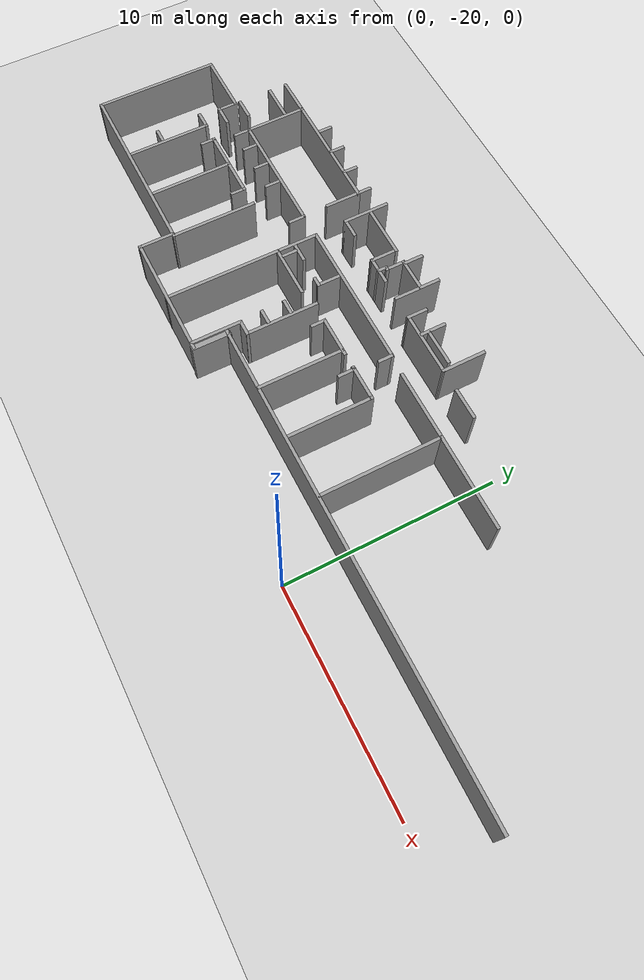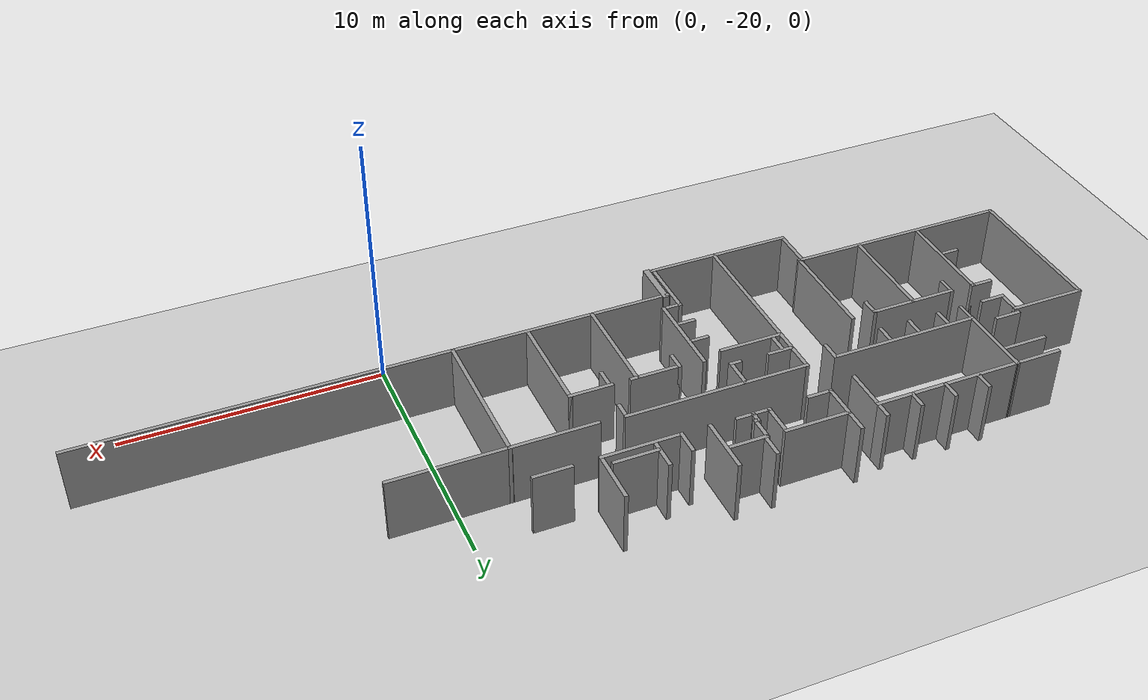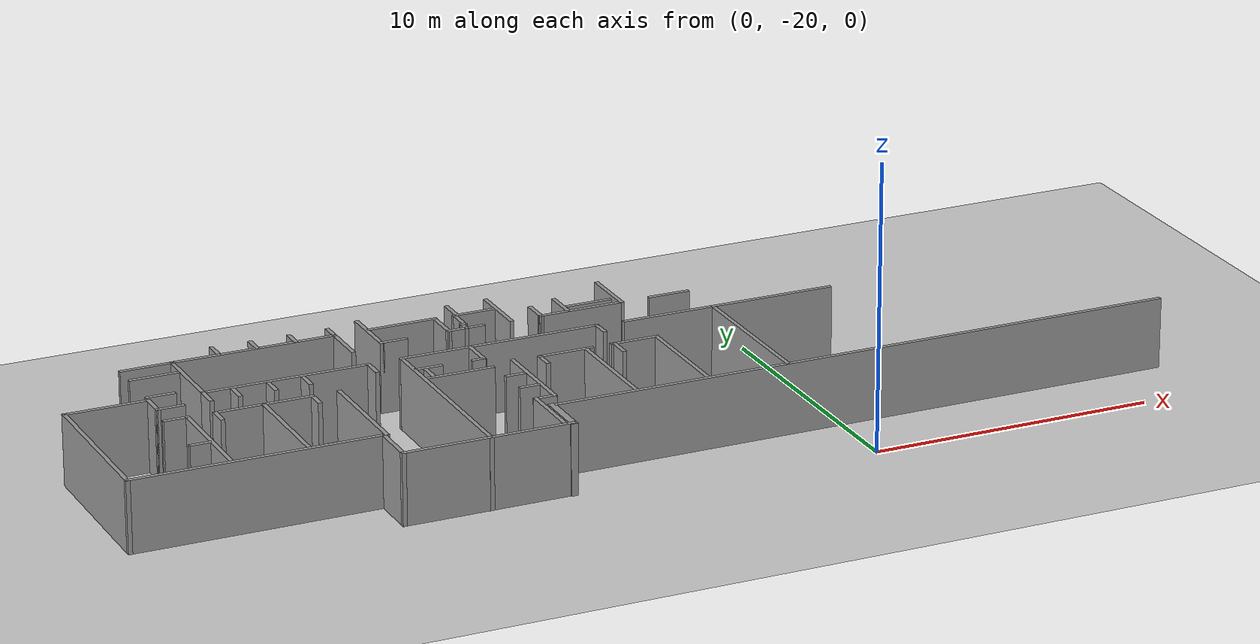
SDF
<sdf version="1.6">
 <world name="default">
  <model name="ground_plane">
   <static>1</static>
   <link name="link">
    <collision name="collision">
     <geometry><plane><normal>0 0 1</normal><size>100 100</size></plane></geometry>
     <surface>
      <contact><collide_bitmask>65535</collide_bitmask></contact>
      <friction><ode><mu>100</mu><mu2>50</mu2></ode></friction>
     </surface>
    </collision>
    <visual name="visual">
     <cast_shadows>0</cast_shadows>
     <geometry><plane><normal>0 0 1</normal><size>100 100</size></plane></geometry>
     <material>
      <script><uri>file://media/materials/scripts/gazebo.material</uri><name>Gazebo/Grey</name></script>
     </material>
    </visual>
   </link>
  </model>
  <model name="harnwell">
   <pose>0.907995 -0.1981 0 0 -0 0</pose>
   <link name="Wall_229">
    <collision name="Wall_229_Collision">
     <geometry><box><size>22.4909 0.15 2.5</size></box></geometry>
     <pose>0 0 1.25 0 -0 0</pose>
    </collision>
    <visual name="Wall_229_Visual">
     <pose>0 0 1.25 0 -0 0</pose>
     <geometry><box><size>22.4909 0.15 2.5</size></box></geometry>
     <material>
      <script><uri>file://media/materials/scripts/gazebo.material</uri><name>Gazebo/Grey</name></script>
      <ambient>1 1 1 1</ambient>
     </material>
     <meta><layer>0</layer></meta>
    </visual>
    <pose>-0.120445 -17.1775 0 0 -0 3.1414</pose>
   </link>
   <link name="Wall_230">
    <collision name="Wall_230_Collision">
     <geometry><box><size>1.85459 0.25 2.5</size></box></geometry>
     <pose>0 0 1.25 0 -0 0</pose>
    </collision>
    <visual name="Wall_230_Visual">
     <pose>0 0 1.25 0 -0 0</pose>
     <geometry><box><size>1.85459 0.25 2.5</size></box></geometry>
     <material>
      <script><uri>file://media/materials/scripts/gazebo.material</uri><name>Gazebo/Grey</name></script>
      <ambient>1 1 1 1</ambient>
     </material>
     <meta><layer>0</layer></meta>
    </visual>
    <pose>-11.2954 -17.9776 0 0 -0 -1.57648</pose>
   </link>
   <link name="Wall_232">
    <collision name="Wall_232_Collision">
     <geometry><box><size>6 0.15 2.5</size></box></geometry>
     <pose>0 0 1.25 0 -0 0</pose>
    </collision>
    <visual name="Wall_232_Visual">
     <pose>0 0 1.25 0 -0 0</pose>
     <geometry><box><size>6 0.15 2.5</size></box></geometry>
     <material>
      <script><uri>file://media/materials/scripts/gazebo.material</uri><name>Gazebo/Grey</name></script>
      <ambient>1 1 1 1</ambient>
     </material>
     <meta><layer>0</layer></meta>
    </visual>
    <pose>-14.225 -18.7799 0 0 -0 3.14159</pose>
   </link>
   <link name="Wall_233">
    <collision name="Wall_233_Collision">
     <geometry><box><size>1.75 0.15 2.5</size></box></geometry>
     <pose>0 0 1.25 0 -0 0</pose>
    </collision>
    <visual name="Wall_233_Visual">
     <pose>0 0 1.25 0 -0 0</pose>
     <geometry><box><size>1.75 0.15 2.5</size></box></geometry>
     <material>
      <script><uri>file://media/materials/scripts/gazebo.material</uri><name>Gazebo/Grey</name></script>
      <ambient>1 1 1 1</ambient>
     </material>
     <meta><layer>0</layer></meta>
    </visual>
    <pose>-17.15 -17.9799 0 0 -0 1.5708</pose>
   </link>
   <link name="Wall_235">
    <collision name="Wall_235_Collision">
     <geometry><box><size>8.75 0.15 2.5</size></box></geometry>
     <pose>0 0 1.25 0 -0 0</pose>
    </collision>
    <visual name="Wall_235_Visual">
     <pose>0 0 1.25 0 -0 0</pose>
     <geometry><box><size>8.75 0.15 2.5</size></box></geometry>
     <material>
      <script><uri>file://media/materials/scripts/gazebo.material</uri><name>Gazebo/Grey</name></script>
      <ambient>1 1 1 1</ambient>
     </material>
     <meta><layer>0</layer></meta>
    </visual>
    <pose>-21.45 -17.1799 0 0 -0 3.14159</pose>
   </link>
   <link name="Wall_236">
    <collision name="Wall_236_Collision">
     <geometry><box><size>6 0.15 2.5</size></box></geometry>
     <pose>0 0 1.25 0 -0 0</pose>
    </collision>
    <visual name="Wall_236_Visual">
     <pose>0 0 1.25 0 -0 0</pose>
     <geometry><box><size>6 0.15 2.5</size></box></geometry>
     <material>
      <script><uri>file://media/materials/scripts/gazebo.material</uri><name>Gazebo/Grey</name></script>
      <ambient>1 1 1 1</ambient>
     </material>
     <meta><layer>0</layer></meta>
    </visual>
    <pose>-25.75 -14.2549 0 0 -0 1.5708</pose>
   </link>
   <link name="Wall_240">
    <collision name="Wall_240_Collision">
     <geometry><box><size>3 0.15 2.5</size></box></geometry>
     <pose>0 0 1.25 0 -0 0</pose>
    </collision>
    <visual name="Wall_240_Visual">
     <pose>0 0 1.25 0 -0 0</pose>
     <geometry><box><size>3 0.15 2.5</size></box></geometry>
     <material>
      <script><uri>file://media/materials/scripts/gazebo.material</uri><name>Gazebo/Grey</name></script>
      <ambient>1 1 1 1</ambient>
     </material>
     <meta><layer>0</layer></meta>
    </visual>
    <pose>-24.325 -11.3299 0 0 -0 0</pose>
   </link>
   <link name="Wall_257">
    <collision name="Wall_257_Collision">
     <geometry><box><size>1.5 0.15 2.5</size></box></geometry>
     <pose>0 0 1.25 0 -0 0</pose>
    </collision>
    <visual name="Wall_257_Visual">
     <pose>0 0 1.25 0 -0 0</pose>
     <geometry><box><size>1.5 0.15 2.5</size></box></geometry>
     <material>
      <script><uri>file://media/materials/scripts/gazebo.material</uri><name>Gazebo/Grey</name></script>
      <ambient>1 1 1 1</ambient>
     </material>
     <meta><layer>0</layer></meta>
    </visual>
    <pose>-3.74086 -9.85348 0 0 -0 3.14159</pose>
   </link>
   <link name="Wall_264">
    <collision name="Wall_264_Collision">
     <geometry><box><size>2.12014 0.15 2.5</size></box></geometry>
     <pose>0 0 1.25 0 -0 0</pose>
    </collision>
    <visual name="Wall_264_Visual">
     <pose>0 0 1.25 0 -0 0</pose>
     <geometry><box><size>2.12014 0.15 2.5</size></box></geometry>
     <material>
      <script><uri>file://media/materials/scripts/gazebo.material</uri><name>Gazebo/Grey</name></script>
      <ambient>1 1 1 1</ambient>
     </material>
     <meta><layer>0</layer></meta>
    </visual>
    <pose>-5.489 -8.87493 0 0 -0 -1.5708</pose>
   </link>
   <link name="Wall_266">
    <collision name="Wall_266_Collision">
     <geometry><box><size>3.11924 0.15 2.5</size></box></geometry>
     <pose>0 0 1.25 0 -0 0</pose>
    </collision>
    <visual name="Wall_266_Visual">
     <pose>0 0 1.25 0 -0 0</pose>
     <geometry><box><size>3.11924 0.15 2.5</size></box></geometry>
     <material>
      <script><uri>file://media/materials/scripts/gazebo.material</uri><name>Gazebo/Grey</name></script>
      <ambient>1 1 1 1</ambient>
     </material>
     <meta><layer>0</layer></meta>
    </visual>
    <pose>-6.97361 -9.86344 0 0 -0 0.002367</pose>
   </link>
   <link name="Wall_268">
    <collision name="Wall_268_Collision">
     <geometry><box><size>1 0.15 2.5</size></box></geometry>
     <pose>0 0 1.25 0 -0 0</pose>
    </collision>
    <visual name="Wall_268_Visual">
     <pose>0 0 1.25 0 -0 0</pose>
     <geometry><box><size>1 0.15 2.5</size></box></geometry>
     <material>
      <script><uri>file://media/materials/scripts/gazebo.material</uri><name>Gazebo/Grey</name></script>
      <ambient>1 1 1 1</ambient>
     </material>
     <meta><layer>0</layer></meta>
    </visual>
    <pose>-8.45822 -9.44195 0 0 -0 1.5708</pose>
   </link>
   <link name="Wall_291">
    <collision name="Wall_291_Collision">
     <geometry><box><size>1.25 0.15 2.5</size></box></geometry>
     <pose>0 0 1.25 0 -0 0</pose>
    </collision>
    <visual name="Wall_291_Visual">
     <pose>0 0 1.25 0 -0 0</pose>
     <geometry><box><size>1.25 0.15 2.5</size></box></geometry>
     <material>
      <script><uri>file://media/materials/scripts/gazebo.material</uri><name>Gazebo/Grey</name></script>
      <ambient>1 1 1 1</ambient>
     </material>
     <meta><layer>0</layer></meta>
    </visual>
    <pose>-7.44674 -9.23588 0 0 -0 -1.5708</pose>
   </link>
   <link name="Wall_294">
    <collision name="Wall_294_Collision">
     <geometry><box><size>1.75 0.15 2.5</size></box></geometry>
     <pose>0 0 1.25 0 -0 0</pose>
    </collision>
    <visual name="Wall_294_Visual">
     <pose>0 0 1.25 0 -0 0</pose>
     <geometry><box><size>1.75 0.15 2.5</size></box></geometry>
     <material>
      <script><uri>file://media/materials/scripts/gazebo.material</uri><name>Gazebo/Grey</name></script>
      <ambient>1 1 1 1</ambient>
     </material>
     <meta><layer>0</layer></meta>
    </visual>
    <pose>-6.58293 -9.45741 0 0 -0 0</pose>
   </link>
   <link name="Wall_296">
    <collision name="Wall_296_Collision">
     <geometry><box><size>2.25 0.15 2.5</size></box></geometry>
     <pose>0 0 1.25 0 -0 0</pose>
    </collision>
    <visual name="Wall_296_Visual">
     <pose>0 0 1.25 0 -0 0</pose>
     <geometry><box><size>2.25 0.15 2.5</size></box></geometry>
     <material>
      <script><uri>file://media/materials/scripts/gazebo.material</uri><name>Gazebo/Grey</name></script>
      <ambient>1 1 1 1</ambient>
     </material>
     <meta><layer>0</layer></meta>
    </visual>
    <pose>-9.54286 -8.80519 0 0 -0 -1.5708</pose>
   </link>
   <link name="Wall_298">
    <collision name="Wall_298_Collision">
     <geometry><box><size>1.64653 0.15 2.5</size></box></geometry>
     <pose>0 0 1.25 0 -0 0</pose>
    </collision>
    <visual name="Wall_298_Visual">
     <pose>0 0 1.25 0 -0 0</pose>
     <geometry><box><size>1.64653 0.15 2.5</size></box></geometry>
     <material>
      <script><uri>file://media/materials/scripts/gazebo.material</uri><name>Gazebo/Grey</name></script>
      <ambient>1 1 1 1</ambient>
     </material>
     <meta><layer>0</layer></meta>
    </visual>
    <pose>-10.3184 -8.63059 0 0 -0 0</pose>
   </link>
   <link name="Wall_301">
    <collision name="Wall_301_Collision">
     <geometry><box><size>0.25 0.15 2.5</size></box></geometry>
     <pose>0 0 1.25 0 -0 0</pose>
    </collision>
    <visual name="Wall_301_Visual">
     <pose>0 0 1.25 0 -0 0</pose>
     <geometry><box><size>0.25 0.15 2.5</size></box></geometry>
     <material>
      <script><uri>file://media/materials/scripts/gazebo.material</uri><name>Gazebo/Grey</name></script>
      <ambient>1 1 1 1</ambient>
     </material>
     <meta><layer>0</layer></meta>
    </visual>
    <pose>-11.1166 -9.48059 0 0 -0 3.14159</pose>
   </link>
   <link name="Wall_302">
    <collision name="Wall_302_Collision">
     <geometry><box><size>0.505938 0.15 2.5</size></box></geometry>
     <pose>0 0 1.25 0 -0 0</pose>
    </collision>
    <visual name="Wall_302_Visual">
     <pose>0 0 1.25 0 -0 0</pose>
     <geometry><box><size>0.505938 0.15 2.5</size></box></geometry>
     <material>
      <script><uri>file://media/materials/scripts/gazebo.material</uri><name>Gazebo/Grey</name></script>
      <ambient>1 1 1 1</ambient>
     </material>
     <meta><layer>0</layer></meta>
    </visual>
    <pose>-11.1668 -9.65826 0 0 -0 -1.57185</pose>
   </link>
   <link name="Wall_303">
    <collision name="Wall_303_Collision">
     <geometry><box><size>0.750401 0.15 2.5</size></box></geometry>
     <pose>0 0 1.25 0 -0 0</pose>
    </collision>
    <visual name="Wall_303_Visual">
     <pose>0 0 1.25 0 -0 0</pose>
     <geometry><box><size>0.750401 0.15 2.5</size></box></geometry>
     <material>
      <script><uri>file://media/materials/scripts/gazebo.material</uri><name>Gazebo/Grey</name></script>
      <ambient>1 1 1 1</ambient>
     </material>
     <meta><layer>0</layer></meta>
    </visual>
    <pose>-10.867 -9.83593 0 0 -0 0</pose>
   </link>
   <link name="Wall_308">
    <collision name="Wall_308_Collision">
     <geometry><box><size>0.993633 0.15 2.5</size></box></geometry>
     <pose>0 0 1.25 0 -0 0</pose>
    </collision>
    <visual name="Wall_308_Visual">
     <pose>0 0 1.25 0 -0 0</pose>
     <geometry><box><size>0.993633 0.15 2.5</size></box></geometry>
     <material>
      <script><uri>file://media/materials/scripts/gazebo.material</uri><name>Gazebo/Grey</name></script>
      <ambient>1 1 1 1</ambient>
     </material>
     <meta><layer>0</layer></meta>
    </visual>
    <pose>-10.982 -8.19493 0 0 -0 -1.5708</pose>
   </link>
   <link name="Wall_310">
    <collision name="Wall_310_Collision">
     <geometry><box><size>2.25 0.15 2.5</size></box></geometry>
     <pose>0 0 1.25 0 -0 0</pose>
    </collision>
    <visual name="Wall_310_Visual">
     <pose>0 0 1.25 0 -0 0</pose>
     <geometry><box><size>2.25 0.15 2.5</size></box></geometry>
     <material>
      <script><uri>file://media/materials/scripts/gazebo.material</uri><name>Gazebo/Grey</name></script>
      <ambient>1 1 1 1</ambient>
     </material>
     <meta><layer>0</layer></meta>
    </visual>
    <pose>-14.2241 -8.8225 0 0 -0 -1.5708</pose>
   </link>
   <link name="Wall_311">
    <collision name="Wall_311_Collision">
     <geometry><box><size>1 0.15 2.5</size></box></geometry>
     <pose>0 0 1.25 0 -0 0</pose>
    </collision>
    <visual name="Wall_311_Visual">
     <pose>0 0 1.25 0 -0 0</pose>
     <geometry><box><size>1 0.15 2.5</size></box></geometry>
     <material>
      <script><uri>file://media/materials/scripts/gazebo.material</uri><name>Gazebo/Grey</name></script>
      <ambient>1 1 1 1</ambient>
     </material>
     <meta><layer>0</layer></meta>
    </visual>
    <pose>-13.7991 -9.8725 0 0 -0 0</pose>
   </link>
   <link name="Wall_318">
    <collision name="Wall_318_Collision">
     <geometry><box><size>0.99 0.15 2.5</size></box></geometry>
     <pose>0 0 1.25 0 -0 0</pose>
    </collision>
    <visual name="Wall_318_Visual">
     <pose>0 0 1.25 0 -0 0</pose>
     <geometry><box><size>0.99 0.15 2.5</size></box></geometry>
     <material>
      <script><uri>file://media/materials/scripts/gazebo.material</uri><name>Gazebo/Grey</name></script>
      <ambient>1 1 1 1</ambient>
     </material>
     <meta><layer>0</layer></meta>
    </visual>
    <pose>-11.0666 -9.05868 0 0 -0 -1.5708</pose>
   </link>
   <link name="Wall_321">
    <collision name="Wall_321_Collision">
     <geometry><box><size>0.771917 0.15 2.5</size></box></geometry>
     <pose>0 0 1.25 0 -0 0</pose>
    </collision>
    <visual name="Wall_321_Visual">
     <pose>0 0 1.25 0 -0 0</pose>
     <geometry><box><size>0.771917 0.15 2.5</size></box></geometry>
     <material>
      <script><uri>file://media/materials/scripts/gazebo.material</uri><name>Gazebo/Grey</name></script>
      <ambient>1 1 1 1</ambient>
     </material>
     <meta><layer>0</layer></meta>
    </visual>
    <pose>-11.478 -9.83618 0 0 -0 -3.14079</pose>
   </link>
   <link name="Wall_322">
    <collision name="Wall_322_Collision">
     <geometry><box><size>1.22887 0.15 2.5</size></box></geometry>
     <pose>0 0 1.25 0 -0 0</pose>
    </collision>
    <visual name="Wall_322_Visual">
     <pose>0 0 1.25 0 -0 0</pose>
     <geometry><box><size>1.22887 0.15 2.5</size></box></geometry>
     <material>
      <script><uri>file://media/materials/scripts/gazebo.material</uri><name>Gazebo/Grey</name></script>
      <ambient>1 1 1 1</ambient>
     </material>
     <meta><layer>0</layer></meta>
    </visual>
    <pose>-11.786 -9.29701 0 0 -0 1.57072</pose>
   </link>
   <link name="Wall_324">
    <collision name="Wall_324_Collision">
     <geometry><box><size>2.55941 0.15 2.5</size></box></geometry>
     <pose>0 0 1.25 0 -0 0</pose>
    </collision>
    <visual name="Wall_324_Visual">
     <pose>0 0 1.25 0 -0 0</pose>
     <geometry><box><size>2.55941 0.15 2.5</size></box></geometry>
     <material>
      <script><uri>file://media/materials/scripts/gazebo.material</uri><name>Gazebo/Grey</name></script>
      <ambient>1 1 1 1</ambient>
     </material>
     <meta><layer>0</layer></meta>
    </visual>
    <pose>-12.9875 -8.61793 0 0 -0 0</pose>
   </link>
   <link name="Wall_354">
    <collision name="Wall_354_Collision">
     <geometry><box><size>1.90206 0.15 2.5</size></box></geometry>
     <pose>0 0 1.25 0 -0 0</pose>
    </collision>
    <visual name="Wall_354_Visual">
     <pose>0 0 1.25 0 -0 0</pose>
     <geometry><box><size>1.90206 0.15 2.5</size></box></geometry>
     <material>
      <script><uri>file://media/materials/scripts/gazebo.material</uri><name>Gazebo/Grey</name></script>
      <ambient>1 1 1 1</ambient>
     </material>
     <meta><layer>0</layer></meta>
    </visual>
    <pose>-21.976 -8.61293 0 0 -0 -3.13589</pose>
   </link>
   <link name="Wall_356">
    <collision name="Wall_356_Collision">
     <geometry><box><size>5.87689 0.15 2.5</size></box></geometry>
     <pose>0 0 1.25 0 -0 0</pose>
    </collision>
    <visual name="Wall_356_Visual">
     <pose>0 0 1.25 0 -0 0</pose>
     <geometry><box><size>5.87689 0.15 2.5</size></box></geometry>
     <material>
      <script><uri>file://media/materials/scripts/gazebo.material</uri><name>Gazebo/Grey</name></script>
      <ambient>1 1 1 1</ambient>
     </material>
     <meta><layer>0</layer></meta>
    </visual>
    <pose>-18.2365 -8.60793 0 0 -0 0</pose>
   </link>
   <link name="Wall_358">
    <collision name="Wall_358_Collision">
     <geometry><box><size>0.75 0.15 2.5</size></box></geometry>
     <pose>0 0 1.25 0 -0 0</pose>
    </collision>
    <visual name="Wall_358_Visual">
     <pose>0 0 1.25 0 -0 0</pose>
     <geometry><box><size>0.75 0.15 2.5</size></box></geometry>
     <material>
      <script><uri>file://media/materials/scripts/gazebo.material</uri><name>Gazebo/Grey</name></script>
      <ambient>1 1 1 1</ambient>
     </material>
     <meta><layer>0</layer></meta>
    </visual>
    <pose>-15.373 -8.30793 0 0 -0 1.5708</pose>
   </link>
   <link name="Wall_360">
    <collision name="Wall_360_Collision">
     <geometry><box><size>0.75 0.15 2.5</size></box></geometry>
     <pose>0 0 1.25 0 -0 0</pose>
    </collision>
    <visual name="Wall_360_Visual">
     <pose>0 0 1.25 0 -0 0</pose>
     <geometry><box><size>0.75 0.15 2.5</size></box></geometry>
     <material>
      <script><uri>file://media/materials/scripts/gazebo.material</uri><name>Gazebo/Grey</name></script>
      <ambient>1 1 1 1</ambient>
     </material>
     <meta><layer>0</layer></meta>
    </visual>
    <pose>-16.7457 -8.30062 0 0 -0 1.5708</pose>
   </link>
   <link name="Wall_362">
    <collision name="Wall_362_Collision">
     <geometry><box><size>0.75 0.15 2.5</size></box></geometry>
     <pose>0 0 1.25 0 -0 0</pose>
    </collision>
    <visual name="Wall_362_Visual">
     <pose>0 0 1.25 0 -0 0</pose>
     <geometry><box><size>0.75 0.15 2.5</size></box></geometry>
     <material>
      <script><uri>file://media/materials/scripts/gazebo.material</uri><name>Gazebo/Grey</name></script>
      <ambient>1 1 1 1</ambient>
     </material>
     <meta><layer>0</layer></meta>
    </visual>
    <pose>-18.1045 -8.27317 0 0 -0 1.5708</pose>
   </link>
   <link name="Wall_365">
    <collision name="Wall_365_Collision">
     <geometry><box><size>0.75 0.15 2.5</size></box></geometry>
     <pose>0 0 1.25 0 -0 0</pose>
    </collision>
    <visual name="Wall_365_Visual">
     <pose>0 0 1.25 0 -0 0</pose>
     <geometry><box><size>0.75 0.15 2.5</size></box></geometry>
     <material>
      <script><uri>file://media/materials/scripts/gazebo.material</uri><name>Gazebo/Grey</name></script>
      <ambient>1 1 1 1</ambient>
     </material>
     <meta><layer>0</layer></meta>
    </visual>
    <pose>-19.4496 -8.22513 0 0 -0 1.5708</pose>
   </link>
   <link name="Wall_367">
    <collision name="Wall_367_Collision">
     <geometry><box><size>1.75 0.15 2.5</size></box></geometry>
     <pose>0 0 1.25 0 -0 0</pose>
    </collision>
    <visual name="Wall_367_Visual">
     <pose>0 0 1.25 0 -0 0</pose>
     <geometry><box><size>1.75 0.15 2.5</size></box></geometry>
     <material>
      <script><uri>file://media/materials/scripts/gazebo.material</uri><name>Gazebo/Grey</name></script>
      <ambient>1 1 1 1</ambient>
     </material>
     <meta><layer>0</layer></meta>
    </visual>
    <pose>-15.373 -9.40793 0 0 -0 -1.5708</pose>
   </link>
   <link name="Wall_369">
    <collision name="Wall_369_Collision">
     <geometry><box><size>3 0.15 2.5</size></box></geometry>
     <pose>0 0 1.25 0 -0 0</pose>
    </collision>
    <visual name="Wall_369_Visual">
     <pose>0 0 1.25 0 -0 0</pose>
     <geometry><box><size>3 0.15 2.5</size></box></geometry>
     <material>
      <script><uri>file://media/materials/scripts/gazebo.material</uri><name>Gazebo/Grey</name></script>
      <ambient>1 1 1 1</ambient>
     </material>
     <meta><layer>0</layer></meta>
    </visual>
    <pose>-21.0925 -10.0329 0 0 -0 -1.56553</pose>
   </link>
   <link name="Wall_370">
    <collision name="Wall_370_Collision">
     <geometry><box><size>5.912 0.15 2.5</size></box></geometry>
     <pose>0 0 1.25 0 -0 0</pose>
    </collision>
    <visual name="Wall_370_Visual">
     <pose>0 0 1.25 0 -0 0</pose>
     <geometry><box><size>5.912 0.15 2.5</size></box></geometry>
     <material>
      <script><uri>file://media/materials/scripts/gazebo.material</uri><name>Gazebo/Grey</name></script>
      <ambient>1 1 1 1</ambient>
     </material>
     <meta><layer>0</layer></meta>
    </visual>
    <pose>-18.204 -11.4579 0 0 -0 0</pose>
   </link>
   <link name="Wall_372">
    <collision name="Wall_372_Collision">
     <geometry><box><size>1.75 0.15 2.5</size></box></geometry>
     <pose>0 0 1.25 0 -0 0</pose>
    </collision>
    <visual name="Wall_372_Visual">
     <pose>0 0 1.25 0 -0 0</pose>
     <geometry><box><size>1.75 0.15 2.5</size></box></geometry>
     <material>
      <script><uri>file://media/materials/scripts/gazebo.material</uri><name>Gazebo/Grey</name></script>
      <ambient>1 1 1 1</ambient>
     </material>
     <meta><layer>0</layer></meta>
    </visual>
    <pose>-22.0351 -9.48048 0 0 -0 0</pose>
   </link>
   <link name="Wall_375">
    <collision name="Wall_375_Collision">
     <geometry><box><size>1.0455 0.15 2.5</size></box></geometry>
     <pose>0 0 1.25 0 -0 0</pose>
    </collision>
    <visual name="Wall_375_Visual">
     <pose>0 0 1.25 0 -0 0</pose>
     <geometry><box><size>1.0455 0.15 2.5</size></box></geometry>
     <material>
      <script><uri>file://media/materials/scripts/gazebo.material</uri><name>Gazebo/Grey</name></script>
      <ambient>1 1 1 1</ambient>
     </material>
     <meta><layer>0</layer></meta>
    </visual>
    <pose>-22.4025 -11.0899 0 0 -0 0</pose>
   </link>
   <link name="Wall_377">
    <collision name="Wall_377_Collision">
     <geometry><box><size>7.5 0.15 2.5</size></box></geometry>
     <pose>0 0 1.25 0 -0 0</pose>
    </collision>
    <visual name="Wall_377_Visual">
     <pose>0 0 1.25 0 -0 0</pose>
     <geometry><box><size>7.5 0.15 2.5</size></box></geometry>
     <material>
      <script><uri>file://media/materials/scripts/gazebo.material</uri><name>Gazebo/Grey</name></script>
      <ambient>1 1 1 1</ambient>
     </material>
     <meta><layer>0</layer></meta>
    </visual>
    <pose>-14.1459 -15.1128 0 0 -0 1.57081</pose>
   </link>
   <link name="Wall_379">
    <collision name="Wall_379_Collision">
     <geometry><box><size>0.835783 0.15 2.5</size></box></geometry>
     <pose>0 0 1.25 0 -0 0</pose>
    </collision>
    <visual name="Wall_379_Visual">
     <pose>0 0 1.25 0 -0 0</pose>
     <geometry><box><size>0.835783 0.15 2.5</size></box></geometry>
     <material>
      <script><uri>file://media/materials/scripts/gazebo.material</uri><name>Gazebo/Grey</name></script>
      <ambient>1 1 1 1</ambient>
     </material>
     <meta><layer>0</layer></meta>
    </visual>
    <pose>-15.323 -11.8008 0 0 -0 -1.57082</pose>
   </link>
   <link name="Wall_381">
    <collision name="Wall_381_Collision">
     <geometry><box><size>0.75 0.15 2.5</size></box></geometry>
     <pose>0 0 1.25 0 -0 0</pose>
    </collision>
    <visual name="Wall_381_Visual">
     <pose>0 0 1.25 0 -0 0</pose>
     <geometry><box><size>0.75 0.15 2.5</size></box></geometry>
     <material>
      <script><uri>file://media/materials/scripts/gazebo.material</uri><name>Gazebo/Grey</name></script>
      <ambient>1 1 1 1</ambient>
     </material>
     <meta><layer>0</layer></meta>
    </visual>
    <pose>-18.8666 -11.8883 0 0 -0 1.5708</pose>
   </link>
   <link name="Wall_383">
    <collision name="Wall_383_Collision">
     <geometry><box><size>0.75 0.15 2.5</size></box></geometry>
     <pose>0 0 1.25 0 -0 0</pose>
    </collision>
    <visual name="Wall_383_Visual">
     <pose>0 0 1.25 0 -0 0</pose>
     <geometry><box><size>0.75 0.15 2.5</size></box></geometry>
     <material>
      <script><uri>file://media/materials/scripts/gazebo.material</uri><name>Gazebo/Grey</name></script>
      <ambient>1 1 1 1</ambient>
     </material>
     <meta><layer>0</layer></meta>
    </visual>
    <pose>-17.6595 -11.9034 0 0 -0 1.5708</pose>
   </link>
   <link name="Wall_385">
    <collision name="Wall_385_Collision">
     <geometry><box><size>0.865414 0.15 2.5</size></box></geometry>
     <pose>0 0 1.25 0 -0 0</pose>
    </collision>
    <visual name="Wall_385_Visual">
     <pose>0 0 1.25 0 -0 0</pose>
     <geometry><box><size>0.865414 0.15 2.5</size></box></geometry>
     <material>
      <script><uri>file://media/materials/scripts/gazebo.material</uri><name>Gazebo/Grey</name></script>
      <ambient>1 1 1 1</ambient>
     </material>
     <meta><layer>0</layer></meta>
    </visual>
    <pose>-21.085 -11.8154 0 0 -0 1.5708</pose>
   </link>
   <link name="Wall_388">
    <collision name="Wall_388_Collision">
     <geometry><box><size>0.75 0.15 2.5</size></box></geometry>
     <pose>0 0 1.25 0 -0 0</pose>
    </collision>
    <visual name="Wall_388_Visual">
     <pose>0 0 1.25 0 -0 0</pose>
     <geometry><box><size>0.75 0.15 2.5</size></box></geometry>
     <material>
      <script><uri>file://media/materials/scripts/gazebo.material</uri><name>Gazebo/Grey</name></script>
      <ambient>1 1 1 1</ambient>
     </material>
     <meta><layer>0</layer></meta>
    </visual>
    <pose>-20.1012 -11.8752 0 0 -0 1.5708</pose>
   </link>
   <link name="Wall_390">
    <collision name="Wall_390_Collision">
     <geometry><box><size>1 0.15 2.5</size></box></geometry>
     <pose>0 0 1.25 0 -0 0</pose>
    </collision>
    <visual name="Wall_390_Visual">
     <pose>0 0 1.25 0 -0 0</pose>
     <geometry><box><size>1 0.15 2.5</size></box></geometry>
     <material>
      <script><uri>file://media/materials/scripts/gazebo.material</uri><name>Gazebo/Grey</name></script>
      <ambient>1 1 1 1</ambient>
     </material>
     <meta><layer>0</layer></meta>
    </visual>
    <pose>-22.9 -11.7549 0 0 -0 -1.5708</pose>
   </link>
   <link name="Wall_391">
    <collision name="Wall_391_Collision">
     <geometry><box><size>1 0.15 2.5</size></box></geometry>
     <pose>0 0 1.25 0 -0 0</pose>
    </collision>
    <visual name="Wall_391_Visual">
     <pose>0 0 1.25 0 -0 0</pose>
     <geometry><box><size>1 0.15 2.5</size></box></geometry>
     <material>
      <script><uri>file://media/materials/scripts/gazebo.material</uri><name>Gazebo/Grey</name></script>
      <ambient>1 1 1 1</ambient>
     </material>
     <meta><layer>0</layer></meta>
    </visual>
    <pose>-22.475 -12.1799 0 0 -0 0</pose>
   </link>
   <link name="Wall_393">
    <collision name="Wall_393_Collision">
     <geometry><box><size>0.902251 0.15 2.5</size></box></geometry>
     <pose>0 0 1.25 0 -0 0</pose>
    </collision>
    <visual name="Wall_393_Visual">
     <pose>0 0 1.25 0 -0 0</pose>
     <geometry><box><size>0.902251 0.15 2.5</size></box></geometry>
     <material>
      <script><uri>file://media/materials/scripts/gazebo.material</uri><name>Gazebo/Grey</name></script>
      <ambient>1 1 1 1</ambient>
     </material>
     <meta><layer>0</layer></meta>
    </visual>
    <pose>-22.642 -13.1759 0 0 -0 0</pose>
   </link>
   <link name="Wall_395">
    <collision name="Wall_395_Collision">
     <geometry><box><size>4 0.15 2.5</size></box></geometry>
     <pose>0 0 1.25 0 -0 0</pose>
    </collision>
    <visual name="Wall_395_Visual">
     <pose>0 0 1.25 0 -0 0</pose>
     <geometry><box><size>4 0.15 2.5</size></box></geometry>
     <material>
      <script><uri>file://media/materials/scripts/gazebo.material</uri><name>Gazebo/Grey</name></script>
      <ambient>1 1 1 1</ambient>
     </material>
     <meta><layer>0</layer></meta>
    </visual>
    <pose>-22.266 -15.1009 0 0 -0 -1.5708</pose>
   </link>
   <link name="Wall_397">
    <collision name="Wall_397_Collision">
     <geometry><box><size>0.75 0.15 2.5</size></box></geometry>
     <pose>0 0 1.25 0 -0 0</pose>
    </collision>
    <visual name="Wall_397_Visual">
     <pose>0 0 1.25 0 -0 0</pose>
     <geometry><box><size>0.75 0.15 2.5</size></box></geometry>
     <material>
      <script><uri>file://media/materials/scripts/gazebo.material</uri><name>Gazebo/Grey</name></script>
      <ambient>1 1 1 1</ambient>
     </material>
     <meta><layer>0</layer></meta>
    </visual>
    <pose>-22.6601 -15.4033 0 0 -0 0</pose>
   </link>
   <link name="Wall_399">
    <collision name="Wall_399_Collision">
     <geometry><box><size>0.750124 0.15 2.5</size></box></geometry>
     <pose>0 0 1.25 0 -0 0</pose>
    </collision>
    <visual name="Wall_399_Visual">
     <pose>0 0 1.25 0 -0 0</pose>
     <geometry><box><size>0.750124 0.15 2.5</size></box></geometry>
     <material>
      <script><uri>file://media/materials/scripts/gazebo.material</uri><name>Gazebo/Grey</name></script>
      <ambient>1 1 1 1</ambient>
     </material>
     <meta><layer>0</layer></meta>
    </visual>
    <pose>-21.324 -13.5069 0 0 -0 -1.5708</pose>
   </link>
   <link name="Wall_401">
    <collision name="Wall_401_Collision">
     <geometry><box><size>3.48371 0.15 2.5</size></box></geometry>
     <pose>0 0 1.25 0 -0 0</pose>
    </collision>
    <visual name="Wall_401_Visual">
     <pose>0 0 1.25 0 -0 0</pose>
     <geometry><box><size>3.48371 0.15 2.5</size></box></geometry>
     <material>
      <script><uri>file://media/materials/scripts/gazebo.material</uri><name>Gazebo/Grey</name></script>
      <ambient>1 1 1 1</ambient>
     </material>
     <meta><layer>0</layer></meta>
    </visual>
    <pose>-19.657 -13.2069 0 0 -0 0</pose>
   </link>
   <link name="Wall_405">
    <collision name="Wall_405_Collision">
     <geometry><box><size>0.75 0.15 2.5</size></box></geometry>
     <pose>0 0 1.25 0 -0 0</pose>
    </collision>
    <visual name="Wall_405_Visual">
     <pose>0 0 1.25 0 -0 0</pose>
     <geometry><box><size>0.75 0.15 2.5</size></box></geometry>
     <material>
      <script><uri>file://media/materials/scripts/gazebo.material</uri><name>Gazebo/Grey</name></script>
      <ambient>1 1 1 1</ambient>
     </material>
     <meta><layer>0</layer></meta>
    </visual>
    <pose>-17.99 -13.5069 0 0 -0 -1.5708</pose>
   </link>
   <link name="Wall_407">
    <collision name="Wall_407_Collision">
     <geometry><box><size>4 0.15 2.5</size></box></geometry>
     <pose>0 0 1.25 0 -0 0</pose>
    </collision>
    <visual name="Wall_407_Visual">
     <pose>0 0 1.25 0 -0 0</pose>
     <geometry><box><size>4 0.15 2.5</size></box></geometry>
     <material>
      <script><uri>file://media/materials/scripts/gazebo.material</uri><name>Gazebo/Grey</name></script>
      <ambient>1 1 1 1</ambient>
     </material>
     <meta><layer>0</layer></meta>
    </visual>
    <pose>-19.6599 -15.1466 0 0 -0 -1.5708</pose>
   </link>
   <link name="Wall_409">
    <collision name="Wall_409_Collision">
     <geometry><box><size>0.258277 0.15 2.5</size></box></geometry>
     <pose>0 0 1.25 0 -0 0</pose>
    </collision>
    <visual name="Wall_409_Visual">
     <pose>0 0 1.25 0 -0 0</pose>
     <geometry><box><size>0.258277 0.15 2.5</size></box></geometry>
     <material>
      <script><uri>file://media/materials/scripts/gazebo.material</uri><name>Gazebo/Grey</name></script>
      <ambient>1 1 1 1</ambient>
     </material>
     <meta><layer>0</layer></meta>
    </visual>
    <pose>-17.0965 -17.1759 0 0 -0 0.074628</pose>
   </link>
   <link name="Wall_410">
    <collision name="Wall_410_Collision">
     <geometry><box><size>4.11666 0.15 2.5</size></box></geometry>
     <pose>0 0 1.25 0 -0 0</pose>
    </collision>
    <visual name="Wall_410_Visual">
     <pose>0 0 1.25 0 -0 0</pose>
     <geometry><box><size>4.11666 0.15 2.5</size></box></geometry>
     <material>
      <script><uri>file://media/materials/scripts/gazebo.material</uri><name>Gazebo/Grey</name></script>
      <ambient>1 1 1 1</ambient>
     </material>
     <meta><layer>0</layer></meta>
    </visual>
    <pose>-17.043 -15.1884 0 0 -0 1.5708</pose>
   </link>
   <link name="Wall_412">
    <collision name="Wall_412_Collision">
     <geometry><box><size>5.76392 0.15 2.5</size></box></geometry>
     <pose>0 0 1.25 0 -0 0</pose>
    </collision>
    <visual name="Wall_412_Visual">
     <pose>0 0 1.25 0 -0 0</pose>
     <geometry><box><size>5.76392 0.15 2.5</size></box></geometry>
     <material>
      <script><uri>file://media/materials/scripts/gazebo.material</uri><name>Gazebo/Grey</name></script>
      <ambient>1 1 1 1</ambient>
     </material>
     <meta><layer>0</layer></meta>
    </visual>
    <pose>-2.86523 -14.3147 0 0 -0 -1.57088</pose>
   </link>
   <link name="Wall_414">
    <collision name="Wall_414_Collision">
     <geometry><box><size>4.49955 0.15 2.5</size></box></geometry>
     <pose>0 0 1.25 0 -0 0</pose>
    </collision>
    <visual name="Wall_414_Visual">
     <pose>0 0 1.25 0 -0 0</pose>
     <geometry><box><size>4.49955 0.15 2.5</size></box></geometry>
     <material>
      <script><uri>file://media/materials/scripts/gazebo.material</uri><name>Gazebo/Grey</name></script>
      <ambient>1 1 1 1</ambient>
     </material>
     <meta><layer>0</layer></meta>
    </visual>
    <pose>-0.690233 -11.5147 0 0 -0 -0.00311</pose>
   </link>
   <link name="Wall_421">
    <collision name="Wall_421_Collision">
     <geometry><box><size>7.17408 0.15 2.5</size></box></geometry>
     <pose>0 0 1.25 0 -0 0</pose>
    </collision>
    <visual name="Wall_421_Visual">
     <pose>0 0 1.25 0 -0 0</pose>
     <geometry><box><size>7.17408 0.15 2.5</size></box></geometry>
     <material>
      <script><uri>file://media/materials/scripts/gazebo.material</uri><name>Gazebo/Grey</name></script>
      <ambient>1 1 1 1</ambient>
     </material>
     <meta><layer>0</layer></meta>
    </visual>
    <pose>-10.634 -11.4379 0 0 -0 0</pose>
   </link>
   <link name="Wall_423">
    <collision name="Wall_423_Collision">
     <geometry><box><size>0.75 0.15 2.5</size></box></geometry>
     <pose>0 0 1.25 0 -0 0</pose>
    </collision>
    <visual name="Wall_423_Visual">
     <pose>0 0 1.25 0 -0 0</pose>
     <geometry><box><size>0.75 0.15 2.5</size></box></geometry>
     <material>
      <script><uri>file://media/materials/scripts/gazebo.material</uri><name>Gazebo/Grey</name></script>
      <ambient>1 1 1 1</ambient>
     </material>
     <meta><layer>0</layer></meta>
    </visual>
    <pose>-7.122 -11.7379 0 0 -0 -1.5708</pose>
   </link>
   <link name="Wall_425">
    <collision name="Wall_425_Collision">
     <geometry><box><size>3.39469 0.15 2.5</size></box></geometry>
     <pose>0 0 1.25 0 -0 0</pose>
    </collision>
    <visual name="Wall_425_Visual">
     <pose>0 0 1.25 0 -0 0</pose>
     <geometry><box><size>3.39469 0.15 2.5</size></box></geometry>
     <material>
      <script><uri>file://media/materials/scripts/gazebo.material</uri><name>Gazebo/Grey</name></script>
      <ambient>1 1 1 1</ambient>
     </material>
     <meta><layer>0</layer></meta>
    </visual>
    <pose>-4.4875 -11.5079 0 0 -0 0</pose>
   </link>
   <link name="Wall_427">
    <collision name="Wall_427_Collision">
     <geometry><box><size>2.44882 0.15 2.5</size></box></geometry>
     <pose>0 0 1.25 0 -0 0</pose>
    </collision>
    <visual name="Wall_427_Visual">
     <pose>0 0 1.25 0 -0 0</pose>
     <geometry><box><size>2.44882 0.15 2.5</size></box></geometry>
     <material>
      <script><uri>file://media/materials/scripts/gazebo.material</uri><name>Gazebo/Grey</name></script>
      <ambient>1 1 1 1</ambient>
     </material>
     <meta><layer>0</layer></meta>
    </visual>
    <pose>-11.553 -17.5959 0 0 -0 -1.5708</pose>
   </link>
   <link name="Wall_429">
    <collision name="Wall_429_Collision">
     <geometry><box><size>0.25 0.15 2.5</size></box></geometry>
     <pose>0 0 1.25 0 -0 0</pose>
    </collision>
    <visual name="Wall_429_Visual">
     <pose>0 0 1.25 0 -0 0</pose>
     <geometry><box><size>0.25 0.15 2.5</size></box></geometry>
     <material>
      <script><uri>file://media/materials/scripts/gazebo.material</uri><name>Gazebo/Grey</name></script>
      <ambient>1 1 1 1</ambient>
     </material>
     <meta><layer>0</layer></meta>
    </visual>
    <pose>-11.3409 -17.1708 0 0 -0 3.14159</pose>
   </link>
   <link name="Wall_431">
    <collision name="Wall_431_Collision">
     <geometry><box><size>3.5 0.15 2.5</size></box></geometry>
     <pose>0 0 1.25 0 -0 0</pose>
    </collision>
    <visual name="Wall_431_Visual">
     <pose>0 0 1.25 0 -0 0</pose>
     <geometry><box><size>3.5 0.15 2.5</size></box></geometry>
     <material>
      <script><uri>file://media/materials/scripts/gazebo.material</uri><name>Gazebo/Grey</name></script>
      <ambient>1 1 1 1</ambient>
     </material>
     <meta><layer>0</layer></meta>
    </visual>
    <pose>-10.8981 -14.7712 0 0 -0 -1.5708</pose>
   </link>
   <link name="Wall_433">
    <collision name="Wall_433_Collision">
     <geometry><box><size>0.80492 0.15 2.5</size></box></geometry>
     <pose>0 0 1.25 0 -0 0</pose>
    </collision>
    <visual name="Wall_433_Visual">
     <pose>0 0 1.25 0 -0 0</pose>
     <geometry><box><size>0.80492 0.15 2.5</size></box></geometry>
     <material>
      <script><uri>file://media/materials/scripts/gazebo.material</uri><name>Gazebo/Grey</name></script>
      <ambient>1 1 1 1</ambient>
     </material>
     <meta><layer>0</layer></meta>
    </visual>
    <pose>-11.2255 -16.4466 0 0 -0 0.001044</pose>
   </link>
   <link name="Wall_435">
    <collision name="Wall_435_Collision">
     <geometry><box><size>2.5 0.15 2.5</size></box></geometry>
     <pose>0 0 1.25 0 -0 0</pose>
    </collision>
    <visual name="Wall_435_Visual">
     <pose>0 0 1.25 0 -0 0</pose>
     <geometry><box><size>2.5 0.15 2.5</size></box></geometry>
     <material>
      <script><uri>file://media/materials/scripts/gazebo.material</uri><name>Gazebo/Grey</name></script>
      <ambient>1 1 1 1</ambient>
     </material>
     <meta><layer>0</layer></meta>
    </visual>
    <pose>-12.9298 -13.3808 0 0 -0 0</pose>
   </link>
   <link name="Wall_438">
    <collision name="Wall_438_Collision">
     <geometry><box><size>0.5 0.15 2.5</size></box></geometry>
     <pose>0 0 1.25 0 -0 0</pose>
    </collision>
    <visual name="Wall_438_Visual">
     <pose>0 0 1.25 0 -0 0</pose>
     <geometry><box><size>0.5 0.15 2.5</size></box></geometry>
     <material>
      <script><uri>file://media/materials/scripts/gazebo.material</uri><name>Gazebo/Grey</name></script>
      <ambient>1 1 1 1</ambient>
     </material>
     <meta><layer>0</layer></meta>
    </visual>
    <pose>-11.8873 -12.5673 0 0 -0 0</pose>
   </link>
   <link name="Wall_439">
    <collision name="Wall_439_Collision">
     <geometry><box><size>1.25 0.15 2.5</size></box></geometry>
     <pose>0 0 1.25 0 -0 0</pose>
    </collision>
    <visual name="Wall_439_Visual">
     <pose>0 0 1.25 0 -0 0</pose>
     <geometry><box><size>1.25 0.15 2.5</size></box></geometry>
     <material>
      <script><uri>file://media/materials/scripts/gazebo.material</uri><name>Gazebo/Grey</name></script>
      <ambient>1 1 1 1</ambient>
     </material>
     <meta><layer>0</layer></meta>
    </visual>
    <pose>-11.7123 -12.0173 0 0 -0 1.5708</pose>
   </link>
   <link name="Wall_441">
    <collision name="Wall_441_Collision">
     <geometry><box><size>1 0.15 2.5</size></box></geometry>
     <pose>0 0 1.25 0 -0 0</pose>
    </collision>
    <visual name="Wall_441_Visual">
     <pose>0 0 1.25 0 -0 0</pose>
     <geometry><box><size>1 0.15 2.5</size></box></geometry>
     <material>
      <script><uri>file://media/materials/scripts/gazebo.material</uri><name>Gazebo/Grey</name></script>
      <ambient>1 1 1 1</ambient>
     </material>
     <meta><layer>0</layer></meta>
    </visual>
    <pose>-13.6705 -12.5352 0 0 -0 0</pose>
   </link>
   <link name="Wall_444">
    <collision name="Wall_444_Collision">
     <geometry><box><size>0.75 0.15 2.5</size></box></geometry>
     <pose>0 0 1.25 0 -0 0</pose>
    </collision>
    <visual name="Wall_444_Visual">
     <pose>0 0 1.25 0 -0 0</pose>
     <geometry><box><size>0.75 0.15 2.5</size></box></geometry>
     <material>
      <script><uri>file://media/materials/scripts/gazebo.material</uri><name>Gazebo/Grey</name></script>
      <ambient>1 1 1 1</ambient>
     </material>
     <meta><layer>0</layer></meta>
    </visual>
    <pose>-13.7926 -12.9511 0 0 -0 1.5708</pose>
   </link>
   <link name="Wall_446">
    <collision name="Wall_446_Collision">
     <geometry><box><size>2 0.15 2.5</size></box></geometry>
     <pose>0 0 1.25 0 -0 0</pose>
    </collision>
    <visual name="Wall_446_Visual">
     <pose>0 0 1.25 0 -0 0</pose>
     <geometry><box><size>2 0.15 2.5</size></box></geometry>
     <material>
      <script><uri>file://media/materials/scripts/gazebo.material</uri><name>Gazebo/Grey</name></script>
      <ambient>1 1 1 1</ambient>
     </material>
     <meta><layer>0</layer></meta>
    </visual>
    <pose>-9.04163 -13.1813 0 0 -0 0</pose>
   </link>
   <link name="Wall_448">
    <collision name="Wall_448_Collision">
     <geometry><box><size>0.75 0.15 2.5</size></box></geometry>
     <pose>0 0 1.25 0 -0 0</pose>
    </collision>
    <visual name="Wall_448_Visual">
     <pose>0 0 1.25 0 -0 0</pose>
     <geometry><box><size>0.75 0.15 2.5</size></box></geometry>
     <material>
      <script><uri>file://media/materials/scripts/gazebo.material</uri><name>Gazebo/Grey</name></script>
      <ambient>1 1 1 1</ambient>
     </material>
     <meta><layer>0</layer></meta>
    </visual>
    <pose>-9.96664 -13.4813 0 0 -0 -1.5708</pose>
   </link>
   <link name="Wall_451">
    <collision name="Wall_451_Collision">
     <geometry><box><size>4.0685 0.15 2.5</size></box></geometry>
     <pose>0 0 1.25 0 -0 0</pose>
    </collision>
    <visual name="Wall_451_Visual">
     <pose>0 0 1.25 0 -0 0</pose>
     <geometry><box><size>4.0685 0.15 2.5</size></box></geometry>
     <material>
      <script><uri>file://media/materials/scripts/gazebo.material</uri><name>Gazebo/Grey</name></script>
      <ambient>1 1 1 1</ambient>
     </material>
     <meta><layer>0</layer></meta>
    </visual>
    <pose>-8.313 -15.1809 0 0 -0 1.5708</pose>
   </link>
   <link name="Wall_453">
    <collision name="Wall_453_Collision">
     <geometry><box><size>1.75 0.15 2.5</size></box></geometry>
     <pose>0 0 1.25 0 -0 0</pose>
    </collision>
    <visual name="Wall_453_Visual">
     <pose>0 0 1.25 0 -0 0</pose>
     <geometry><box><size>1.75 0.15 2.5</size></box></geometry>
     <material>
      <script><uri>file://media/materials/scripts/gazebo.material</uri><name>Gazebo/Grey</name></script>
      <ambient>1 1 1 1</ambient>
     </material>
     <meta><layer>0</layer></meta>
    </visual>
    <pose>-6.54493 -13.1787 0 0 -0 0</pose>
   </link>
   <link name="Wall_454">
    <collision name="Wall_454_Collision">
     <geometry><box><size>4 0.15 2.5</size></box></geometry>
     <pose>0 0 1.25 0 -0 0</pose>
    </collision>
    <visual name="Wall_454_Visual">
     <pose>0 0 1.25 0 -0 0</pose>
     <geometry><box><size>4 0.15 2.5</size></box></geometry>
     <material>
      <script><uri>file://media/materials/scripts/gazebo.material</uri><name>Gazebo/Grey</name></script>
      <ambient>1 1 1 1</ambient>
     </material>
     <meta><layer>0</layer></meta>
    </visual>
    <pose>-5.74493 -15.1037 0 0 -0 -1.5708</pose>
   </link>
   <link name="Wall_456">
    <collision name="Wall_456_Collision">
     <geometry><box><size>0.83632 0.15 2.5</size></box></geometry>
     <pose>0 0 1.25 0 -0 0</pose>
    </collision>
    <visual name="Wall_456_Visual">
     <pose>0 0 1.25 0 -0 0</pose>
     <geometry><box><size>0.83632 0.15 2.5</size></box></geometry>
     <material>
      <script><uri>file://media/materials/scripts/gazebo.material</uri><name>Gazebo/Grey</name></script>
      <ambient>1 1 1 1</ambient>
     </material>
     <meta><layer>0</layer></meta>
    </visual>
    <pose>-7.266 -13.5519 0 0 -0 1.5708</pose>
   </link>
   <link name="Wall_458">
    <collision name="Wall_458_Collision">
     <geometry><box><size>0.75 0.15 2.5</size></box></geometry>
     <pose>0 0 1.25 0 -0 0</pose>
    </collision>
    <visual name="Wall_458_Visual">
     <pose>0 0 1.25 0 -0 0</pose>
     <geometry><box><size>0.75 0.15 2.5</size></box></geometry>
     <material>
      <script><uri>file://media/materials/scripts/gazebo.material</uri><name>Gazebo/Grey</name></script>
      <ambient>1 1 1 1</ambient>
     </material>
     <meta><layer>0</layer></meta>
    </visual>
    <pose>-11.3163 -14.2999 0 0 -0 0</pose>
   </link>
   <link name="Wall_460">
    <collision name="Wall_460_Collision">
     <geometry><box><size>0.75 0.15 2.5</size></box></geometry>
     <pose>0 0 1.25 0 -0 0</pose>
    </collision>
    <visual name="Wall_460_Visual">
     <pose>0 0 1.25 0 -0 0</pose>
     <geometry><box><size>0.75 0.15 2.5</size></box></geometry>
     <material>
      <script><uri>file://media/materials/scripts/gazebo.material</uri><name>Gazebo/Grey</name></script>
      <ambient>1 1 1 1</ambient>
     </material>
     <meta><layer>0</layer></meta>
    </visual>
    <pose>-11.3025 -15.3877 0 0 -0 0</pose>
   </link>
   <static>1</static>
  </model>
 </world>
</sdf>
